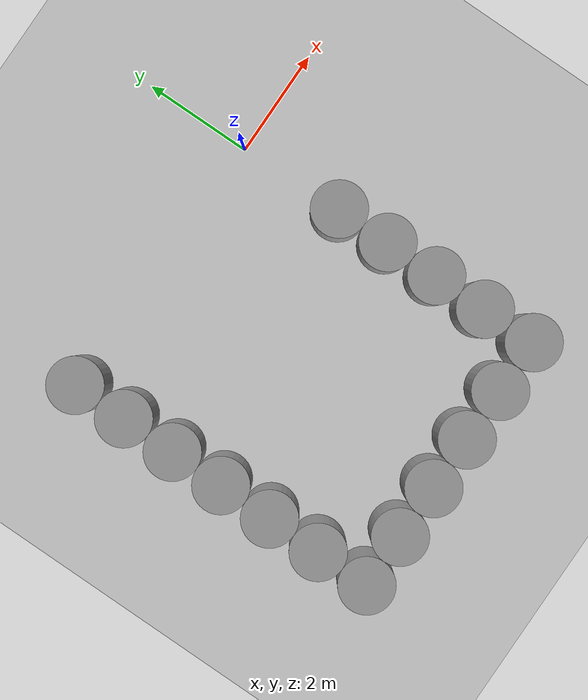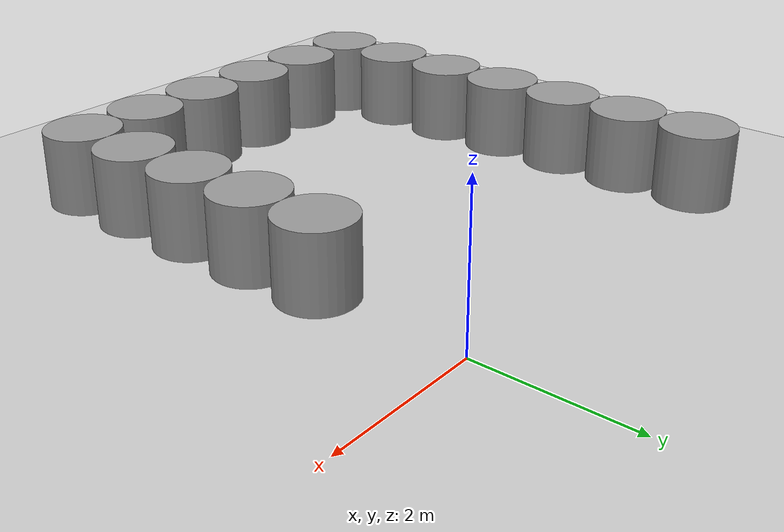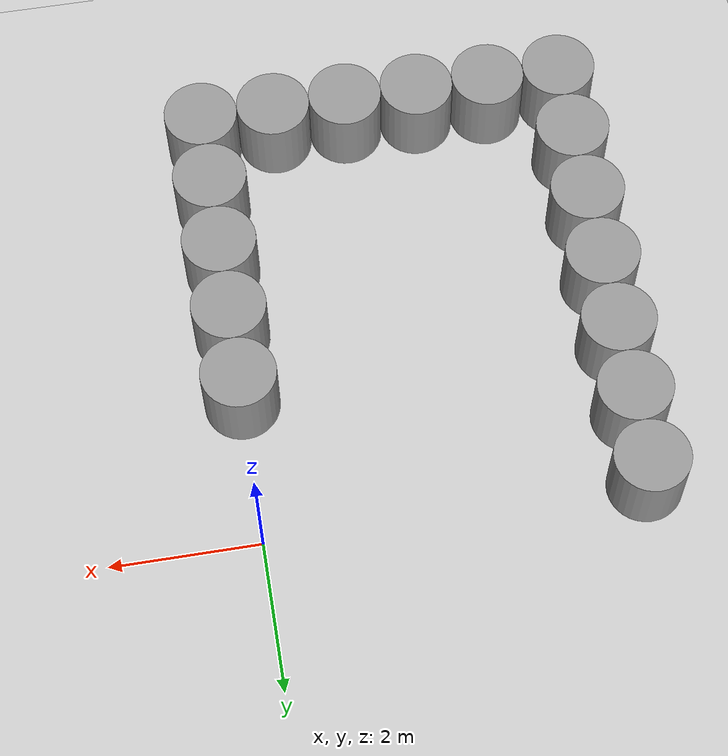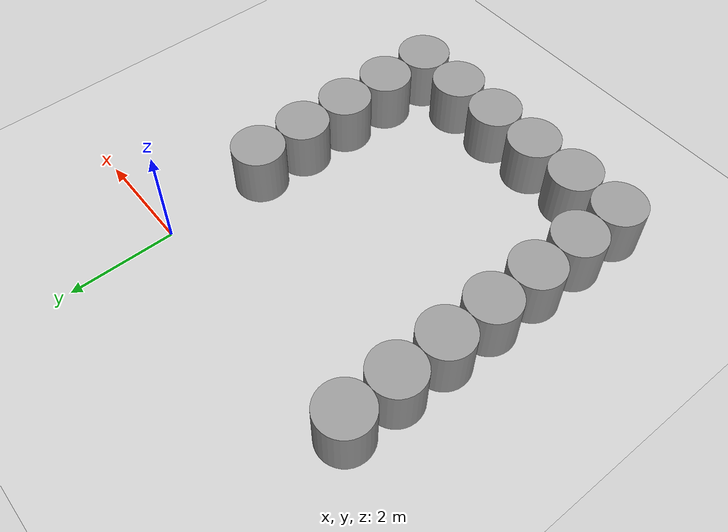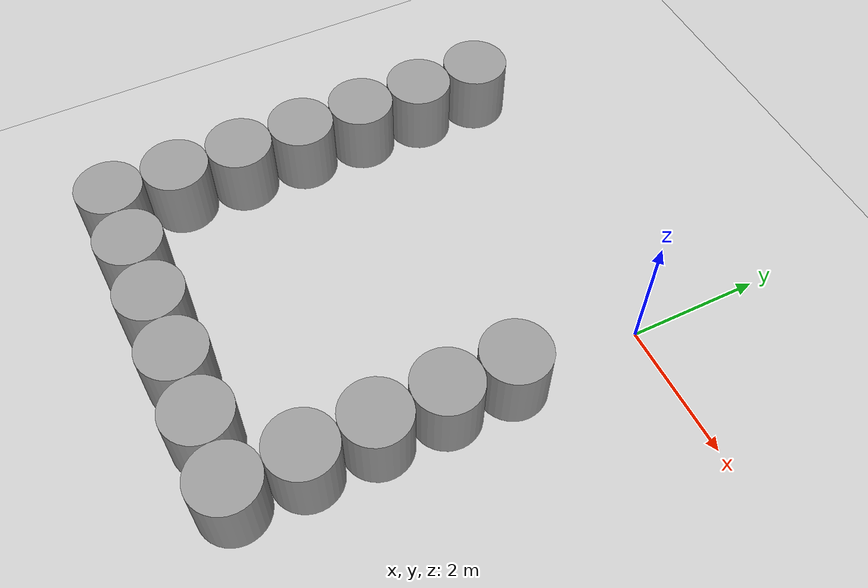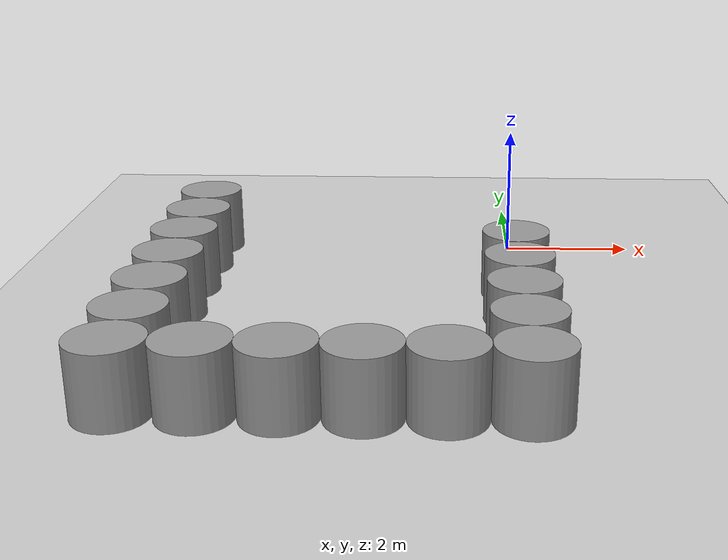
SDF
<sdf version="1.7">
 <world name="default">
  <model name="ground_plane">
   <static>1</static>
   <link name="link">
    <collision name="collision">
     <geometry><plane><normal>0 0 1</normal><size>100 100</size></plane></geometry>
     <surface>
      <contact><collide_bitmask>65535</collide_bitmask></contact>
      <friction><ode><mu>100</mu><mu2>50</mu2></ode></friction>
     </surface>
    </collision>
    <visual name="visual">
     <cast_shadows>0</cast_shadows>
     <geometry><plane><normal>0 0 1</normal><size>100 100</size></plane></geometry>
     <material>
      <script><uri>file://media/materials/scripts/gazebo.material</uri><name>Gazebo/Grey</name></script>
     </material>
    </visual>
   </link>
  </model>
  <model name="cylinder_1m_1">
   <model name="cylinder_1m">
    <link name="link_0">
     <inertial>
      <mass>1</mass>
      <inertia>
       <ixx>0.166667</ixx>
       <ixy>0</ixy>
       <ixz>0</ixz>
       <iyy>0.166667</iyy>
       <iyz>0</iyz>
       <izz>0.166667</izz>
      </inertia>
     </inertial>
     <pose>0 0 -0 1.5708 -0 0</pose>
     <visual name="visual">
      <geometry>
       <mesh>
        <uri>/home/leesirius/workbench_ws/src/tb3_custom_worlds/custom_models/cylinder_1m.obj</uri>
        <scale>1 1 1</scale>
       </mesh>
      </geometry>
      <material>
       <lighting>1</lighting>
       <script><uri>file://media/materials/scripts/gazebo.material</uri><name>Gazebo/Grey</name></script>
       <shader type="pixel"/>
      </material>
     </visual>
     <collision name="collision">
      <geometry>
       <mesh>
        <uri>/home/leesirius/workbench_ws/src/tb3_custom_worlds/custom_models/cylinder_1m.obj</uri>
        <scale>1 1 1</scale>
       </mesh>
      </geometry>
      <surface>
       <friction>
        <ode><mu>1</mu><mu2>1</mu2><fdir1>0 0 0</fdir1><slip1>0</slip1><slip2>0</slip2></ode>
        <torsional>
         <coefficient>1</coefficient>
         <patch_radius>0</patch_radius>
         <surface_radius>0</surface_radius>
         <use_patch_radius>1</use_patch_radius>
         <ode><slip>0</slip></ode>
        </torsional>
       </friction>
       <bounce><restitution_coefficient>0</restitution_coefficient><threshold>1e+06</threshold></bounce>
       <contact>
        <collide_without_contact>0</collide_without_contact>
        <collide_without_contact_bitmask>1</collide_without_contact_bitmask>
        <collide_bitmask>1</collide_bitmask>
        <ode>
         <soft_cfm>0</soft_cfm>
         <soft_erp>0.2</soft_erp>
         <kp>1e+13</kp>
         <kd>1</kd>
         <max_vel>0.01</max_vel>
         <min_depth>0</min_depth>
        </ode>
        <bullet>
         <split_impulse>1</split_impulse>
         <split_impulse_penetration_threshold>-0.01</split_impulse_penetration_threshold>
         <soft_cfm>0</soft_cfm>
         <soft_erp>0.2</soft_erp>
         <kp>1e+13</kp>
         <kd>1</kd>
        </bullet>
       </contact>
      </surface>
     </collision>
    </link>
    <static>0</static>
    <pose>0 0 4e-06 0 -0 0</pose>
   </model>
   <static>1</static>
   <pose>1.1e-05 -2.00001 0.499996 -4e-06 0 3.1e-05</pose>
  </model>
  <model name="cylinder_1m_1_clone">
   <model name="cylinder_1m">
    <link name="link_0">
     <inertial>
      <mass>1</mass>
      <inertia>
       <ixx>0.166667</ixx>
       <ixy>0</ixy>
       <ixz>0</ixz>
       <iyy>0.166667</iyy>
       <iyz>0</iyz>
       <izz>0.166667</izz>
      </inertia>
     </inertial>
     <pose>0 0 -0 1.5708 -0 0</pose>
     <visual name="visual">
      <geometry>
       <mesh>
        <uri>/home/leesirius/workbench_ws/src/tb3_custom_worlds/custom_models/cylinder_1m.obj</uri>
        <scale>1 1 1</scale>
       </mesh>
      </geometry>
      <material>
       <lighting>1</lighting>
       <script><uri>file://media/materials/scripts/gazebo.material</uri><name>Gazebo/Grey</name></script>
       <shader type="pixel"/>
      </material>
     </visual>
     <collision name="collision">
      <geometry>
       <mesh>
        <uri>/home/leesirius/workbench_ws/src/tb3_custom_worlds/custom_models/cylinder_1m.obj</uri>
        <scale>1 1 1</scale>
       </mesh>
      </geometry>
      <surface>
       <friction>
        <ode><mu>1</mu><mu2>1</mu2><fdir1>0 0 0</fdir1><slip1>0</slip1><slip2>0</slip2></ode>
        <torsional>
         <coefficient>1</coefficient>
         <patch_radius>0</patch_radius>
         <surface_radius>0</surface_radius>
         <use_patch_radius>1</use_patch_radius>
         <ode><slip>0</slip></ode>
        </torsional>
       </friction>
       <bounce><restitution_coefficient>0</restitution_coefficient><threshold>1e+06</threshold></bounce>
       <contact>
        <collide_without_contact>0</collide_without_contact>
        <collide_without_contact_bitmask>1</collide_without_contact_bitmask>
        <collide_bitmask>1</collide_bitmask>
        <ode>
         <soft_cfm>0</soft_cfm>
         <soft_erp>0.2</soft_erp>
         <kp>1e+13</kp>
         <kd>1</kd>
         <max_vel>0.01</max_vel>
         <min_depth>0</min_depth>
        </ode>
        <bullet>
         <split_impulse>1</split_impulse>
         <split_impulse_penetration_threshold>-0.01</split_impulse_penetration_threshold>
         <soft_cfm>0</soft_cfm>
         <soft_erp>0.2</soft_erp>
         <kp>1e+13</kp>
         <kd>1</kd>
        </bullet>
       </contact>
      </surface>
     </collision>
    </link>
    <static>0</static>
    <pose>0 0 4e-06 0 -0 0</pose>
   </model>
   <static>1</static>
   <pose>1.1e-05 -3.00001 0.499996 -4e-06 0 3.1e-05</pose>
  </model>
  <model name="cylinder_1m_1_clone_0">
   <model name="cylinder_1m">
    <link name="link_0">
     <inertial>
      <mass>1</mass>
      <inertia>
       <ixx>0.166667</ixx>
       <ixy>0</ixy>
       <ixz>0</ixz>
       <iyy>0.166667</iyy>
       <iyz>0</iyz>
       <izz>0.166667</izz>
      </inertia>
     </inertial>
     <pose>0 0 -0 1.5708 -0 0</pose>
     <visual name="visual">
      <geometry>
       <mesh>
        <uri>/home/leesirius/workbench_ws/src/tb3_custom_worlds/custom_models/cylinder_1m.obj</uri>
        <scale>1 1 1</scale>
       </mesh>
      </geometry>
      <material>
       <lighting>1</lighting>
       <script><uri>file://media/materials/scripts/gazebo.material</uri><name>Gazebo/Grey</name></script>
       <shader type="pixel"/>
      </material>
     </visual>
     <collision name="collision">
      <geometry>
       <mesh>
        <uri>/home/leesirius/workbench_ws/src/tb3_custom_worlds/custom_models/cylinder_1m.obj</uri>
        <scale>1 1 1</scale>
       </mesh>
      </geometry>
      <surface>
       <friction>
        <ode><mu>1</mu><mu2>1</mu2><fdir1>0 0 0</fdir1><slip1>0</slip1><slip2>0</slip2></ode>
        <torsional>
         <coefficient>1</coefficient>
         <patch_radius>0</patch_radius>
         <surface_radius>0</surface_radius>
         <use_patch_radius>1</use_patch_radius>
         <ode><slip>0</slip></ode>
        </torsional>
       </friction>
       <bounce><restitution_coefficient>0</restitution_coefficient><threshold>1e+06</threshold></bounce>
       <contact>
        <collide_without_contact>0</collide_without_contact>
        <collide_without_contact_bitmask>1</collide_without_contact_bitmask>
        <collide_bitmask>1</collide_bitmask>
        <ode>
         <soft_cfm>0</soft_cfm>
         <soft_erp>0.2</soft_erp>
         <kp>1e+13</kp>
         <kd>1</kd>
         <max_vel>0.01</max_vel>
         <min_depth>0</min_depth>
        </ode>
        <bullet>
         <split_impulse>1</split_impulse>
         <split_impulse_penetration_threshold>-0.01</split_impulse_penetration_threshold>
         <soft_cfm>0</soft_cfm>
         <soft_erp>0.2</soft_erp>
         <kp>1e+13</kp>
         <kd>1</kd>
        </bullet>
       </contact>
      </surface>
     </collision>
    </link>
    <static>0</static>
    <pose>0 0 4e-06 0 -0 0</pose>
   </model>
   <static>1</static>
   <pose>1.1e-05 -4.00001 0.499996 -4e-06 0 3.1e-05</pose>
  </model>
  <model name="cylinder_1m_1_clone_2">
   <model name="cylinder_1m">
    <link name="link_0">
     <inertial>
      <mass>1</mass>
      <inertia>
       <ixx>0.166667</ixx>
       <ixy>0</ixy>
       <ixz>0</ixz>
       <iyy>0.166667</iyy>
       <iyz>0</iyz>
       <izz>0.166667</izz>
      </inertia>
     </inertial>
     <pose>0 0 -0 1.5708 -0 0</pose>
     <visual name="visual">
      <geometry>
       <mesh>
        <uri>/home/leesirius/workbench_ws/src/tb3_custom_worlds/custom_models/cylinder_1m.obj</uri>
        <scale>1 1 1</scale>
       </mesh>
      </geometry>
      <material>
       <lighting>1</lighting>
       <script><uri>file://media/materials/scripts/gazebo.material</uri><name>Gazebo/Grey</name></script>
       <shader type="pixel"/>
      </material>
     </visual>
     <collision name="collision">
      <geometry>
       <mesh>
        <uri>/home/leesirius/workbench_ws/src/tb3_custom_worlds/custom_models/cylinder_1m.obj</uri>
        <scale>1 1 1</scale>
       </mesh>
      </geometry>
      <surface>
       <friction>
        <ode><mu>1</mu><mu2>1</mu2><fdir1>0 0 0</fdir1><slip1>0</slip1><slip2>0</slip2></ode>
        <torsional>
         <coefficient>1</coefficient>
         <patch_radius>0</patch_radius>
         <surface_radius>0</surface_radius>
         <use_patch_radius>1</use_patch_radius>
         <ode><slip>0</slip></ode>
        </torsional>
       </friction>
       <bounce><restitution_coefficient>0</restitution_coefficient><threshold>1e+06</threshold></bounce>
       <contact>
        <collide_without_contact>0</collide_without_contact>
        <collide_without_contact_bitmask>1</collide_without_contact_bitmask>
        <collide_bitmask>1</collide_bitmask>
        <ode>
         <soft_cfm>0</soft_cfm>
         <soft_erp>0.2</soft_erp>
         <kp>1e+13</kp>
         <kd>1</kd>
         <max_vel>0.01</max_vel>
         <min_depth>0</min_depth>
        </ode>
        <bullet>
         <split_impulse>1</split_impulse>
         <split_impulse_penetration_threshold>-0.01</split_impulse_penetration_threshold>
         <soft_cfm>0</soft_cfm>
         <soft_erp>0.2</soft_erp>
         <kp>1e+13</kp>
         <kd>1</kd>
        </bullet>
       </contact>
      </surface>
     </collision>
    </link>
    <static>0</static>
    <pose>0 0 4e-06 0 -0 0</pose>
   </model>
   <static>1</static>
   <pose>1.1e-05 -5.00001 0.499996 -4e-06 0 3.1e-05</pose>
  </model>
  <model name="cylinder_1m_1_clone_5">
   <model name="cylinder_1m">
    <link name="link_0">
     <inertial>
      <mass>1</mass>
      <inertia>
       <ixx>0.166667</ixx>
       <ixy>0</ixy>
       <ixz>0</ixz>
       <iyy>0.166667</iyy>
       <iyz>0</iyz>
       <izz>0.166667</izz>
      </inertia>
     </inertial>
     <pose>0 0 -0 1.5708 -0 0</pose>
     <visual name="visual">
      <geometry>
       <mesh>
        <uri>/home/leesirius/workbench_ws/src/tb3_custom_worlds/custom_models/cylinder_1m.obj</uri>
        <scale>1 1 1</scale>
       </mesh>
      </geometry>
      <material>
       <lighting>1</lighting>
       <script><uri>file://media/materials/scripts/gazebo.material</uri><name>Gazebo/Grey</name></script>
       <shader type="pixel"/>
      </material>
     </visual>
     <collision name="collision">
      <geometry>
       <mesh>
        <uri>/home/leesirius/workbench_ws/src/tb3_custom_worlds/custom_models/cylinder_1m.obj</uri>
        <scale>1 1 1</scale>
       </mesh>
      </geometry>
      <surface>
       <friction>
        <ode><mu>1</mu><mu2>1</mu2><fdir1>0 0 0</fdir1><slip1>0</slip1><slip2>0</slip2></ode>
        <torsional>
         <coefficient>1</coefficient>
         <patch_radius>0</patch_radius>
         <surface_radius>0</surface_radius>
         <use_patch_radius>1</use_patch_radius>
         <ode><slip>0</slip></ode>
        </torsional>
       </friction>
       <bounce><restitution_coefficient>0</restitution_coefficient><threshold>1e+06</threshold></bounce>
       <contact>
        <collide_without_contact>0</collide_without_contact>
        <collide_without_contact_bitmask>1</collide_without_contact_bitmask>
        <collide_bitmask>1</collide_bitmask>
        <ode>
         <soft_cfm>0</soft_cfm>
         <soft_erp>0.2</soft_erp>
         <kp>1e+13</kp>
         <kd>1</kd>
         <max_vel>0.01</max_vel>
         <min_depth>0</min_depth>
        </ode>
        <bullet>
         <split_impulse>1</split_impulse>
         <split_impulse_penetration_threshold>-0.01</split_impulse_penetration_threshold>
         <soft_cfm>0</soft_cfm>
         <soft_erp>0.2</soft_erp>
         <kp>1e+13</kp>
         <kd>1</kd>
        </bullet>
       </contact>
      </surface>
     </collision>
    </link>
    <static>0</static>
    <pose>0 0 4e-06 0 -0 0</pose>
   </model>
   <static>1</static>
   <pose>1.1e-05 -6.00001 0.499996 -4e-06 0 3.1e-05</pose>
  </model>
  <model name="cylinder_1m_1_clone_6">
   <model name="cylinder_1m">
    <link name="link_0">
     <inertial>
      <mass>1</mass>
      <inertia>
       <ixx>0.166667</ixx>
       <ixy>0</ixy>
       <ixz>0</ixz>
       <iyy>0.166667</iyy>
       <iyz>0</iyz>
       <izz>0.166667</izz>
      </inertia>
     </inertial>
     <pose>0 0 -0 1.5708 -0 0</pose>
     <visual name="visual">
      <geometry>
       <mesh>
        <uri>/home/leesirius/workbench_ws/src/tb3_custom_worlds/custom_models/cylinder_1m.obj</uri>
        <scale>1 1 1</scale>
       </mesh>
      </geometry>
      <material>
       <lighting>1</lighting>
       <script><uri>file://media/materials/scripts/gazebo.material</uri><name>Gazebo/Grey</name></script>
       <shader type="pixel"/>
      </material>
     </visual>
     <collision name="collision">
      <geometry>
       <mesh>
        <uri>/home/leesirius/workbench_ws/src/tb3_custom_worlds/custom_models/cylinder_1m.obj</uri>
        <scale>1 1 1</scale>
       </mesh>
      </geometry>
      <surface>
       <friction>
        <ode><mu>1</mu><mu2>1</mu2><fdir1>0 0 0</fdir1><slip1>0</slip1><slip2>0</slip2></ode>
        <torsional>
         <coefficient>1</coefficient>
         <patch_radius>0</patch_radius>
         <surface_radius>0</surface_radius>
         <use_patch_radius>1</use_patch_radius>
         <ode><slip>0</slip></ode>
        </torsional>
       </friction>
       <bounce><restitution_coefficient>0</restitution_coefficient><threshold>1e+06</threshold></bounce>
       <contact>
        <collide_without_contact>0</collide_without_contact>
        <collide_without_contact_bitmask>1</collide_without_contact_bitmask>
        <collide_bitmask>1</collide_bitmask>
        <ode>
         <soft_cfm>0</soft_cfm>
         <soft_erp>0.2</soft_erp>
         <kp>1e+13</kp>
         <kd>1</kd>
         <max_vel>0.01</max_vel>
         <min_depth>0</min_depth>
        </ode>
        <bullet>
         <split_impulse>1</split_impulse>
         <split_impulse_penetration_threshold>-0.01</split_impulse_penetration_threshold>
         <soft_cfm>0</soft_cfm>
         <soft_erp>0.2</soft_erp>
         <kp>1e+13</kp>
         <kd>1</kd>
        </bullet>
       </contact>
      </surface>
     </collision>
    </link>
    <static>0</static>
    <pose>0 0 4e-06 0 -0 0</pose>
   </model>
   <static>1</static>
   <pose>-0.999989 -6.00001 0.499996 -4e-06 0 3.1e-05</pose>
  </model>
  <model name="cylinder_1m_1_clone_7">
   <model name="cylinder_1m">
    <link name="link_0">
     <inertial>
      <mass>1</mass>
      <inertia>
       <ixx>0.166667</ixx>
       <ixy>0</ixy>
       <ixz>0</ixz>
       <iyy>0.166667</iyy>
       <iyz>0</iyz>
       <izz>0.166667</izz>
      </inertia>
     </inertial>
     <pose>0 0 -0 1.5708 -0 0</pose>
     <visual name="visual">
      <geometry>
       <mesh>
        <uri>/home/leesirius/workbench_ws/src/tb3_custom_worlds/custom_models/cylinder_1m.obj</uri>
        <scale>1 1 1</scale>
       </mesh>
      </geometry>
      <material>
       <lighting>1</lighting>
       <script><uri>file://media/materials/scripts/gazebo.material</uri><name>Gazebo/Grey</name></script>
       <shader type="pixel"/>
      </material>
     </visual>
     <collision name="collision">
      <geometry>
       <mesh>
        <uri>/home/leesirius/workbench_ws/src/tb3_custom_worlds/custom_models/cylinder_1m.obj</uri>
        <scale>1 1 1</scale>
       </mesh>
      </geometry>
      <surface>
       <friction>
        <ode><mu>1</mu><mu2>1</mu2><fdir1>0 0 0</fdir1><slip1>0</slip1><slip2>0</slip2></ode>
        <torsional>
         <coefficient>1</coefficient>
         <patch_radius>0</patch_radius>
         <surface_radius>0</surface_radius>
         <use_patch_radius>1</use_patch_radius>
         <ode><slip>0</slip></ode>
        </torsional>
       </friction>
       <bounce><restitution_coefficient>0</restitution_coefficient><threshold>1e+06</threshold></bounce>
       <contact>
        <collide_without_contact>0</collide_without_contact>
        <collide_without_contact_bitmask>1</collide_without_contact_bitmask>
        <collide_bitmask>1</collide_bitmask>
        <ode>
         <soft_cfm>0</soft_cfm>
         <soft_erp>0.2</soft_erp>
         <kp>1e+13</kp>
         <kd>1</kd>
         <max_vel>0.01</max_vel>
         <min_depth>0</min_depth>
        </ode>
        <bullet>
         <split_impulse>1</split_impulse>
         <split_impulse_penetration_threshold>-0.01</split_impulse_penetration_threshold>
         <soft_cfm>0</soft_cfm>
         <soft_erp>0.2</soft_erp>
         <kp>1e+13</kp>
         <kd>1</kd>
        </bullet>
       </contact>
      </surface>
     </collision>
    </link>
    <static>0</static>
    <pose>0 0 4e-06 0 -0 0</pose>
   </model>
   <static>1</static>
   <pose>-1.99999 -6.00001 0.499996 -4e-06 0 3.1e-05</pose>
  </model>
  <model name="cylinder_1m_1_clone_8">
   <model name="cylinder_1m">
    <link name="link_0">
     <inertial>
      <mass>1</mass>
      <inertia>
       <ixx>0.166667</ixx>
       <ixy>0</ixy>
       <ixz>0</ixz>
       <iyy>0.166667</iyy>
       <iyz>0</iyz>
       <izz>0.166667</izz>
      </inertia>
     </inertial>
     <pose>0 0 -0 1.5708 -0 0</pose>
     <visual name="visual">
      <geometry>
       <mesh>
        <uri>/home/leesirius/workbench_ws/src/tb3_custom_worlds/custom_models/cylinder_1m.obj</uri>
        <scale>1 1 1</scale>
       </mesh>
      </geometry>
      <material>
       <lighting>1</lighting>
       <script><uri>file://media/materials/scripts/gazebo.material</uri><name>Gazebo/Grey</name></script>
       <shader type="pixel"/>
      </material>
     </visual>
     <collision name="collision">
      <geometry>
       <mesh>
        <uri>/home/leesirius/workbench_ws/src/tb3_custom_worlds/custom_models/cylinder_1m.obj</uri>
        <scale>1 1 1</scale>
       </mesh>
      </geometry>
      <surface>
       <friction>
        <ode><mu>1</mu><mu2>1</mu2><fdir1>0 0 0</fdir1><slip1>0</slip1><slip2>0</slip2></ode>
        <torsional>
         <coefficient>1</coefficient>
         <patch_radius>0</patch_radius>
         <surface_radius>0</surface_radius>
         <use_patch_radius>1</use_patch_radius>
         <ode><slip>0</slip></ode>
        </torsional>
       </friction>
       <bounce><restitution_coefficient>0</restitution_coefficient><threshold>1e+06</threshold></bounce>
       <contact>
        <collide_without_contact>0</collide_without_contact>
        <collide_without_contact_bitmask>1</collide_without_contact_bitmask>
        <collide_bitmask>1</collide_bitmask>
        <ode>
         <soft_cfm>0</soft_cfm>
         <soft_erp>0.2</soft_erp>
         <kp>1e+13</kp>
         <kd>1</kd>
         <max_vel>0.01</max_vel>
         <min_depth>0</min_depth>
        </ode>
        <bullet>
         <split_impulse>1</split_impulse>
         <split_impulse_penetration_threshold>-0.01</split_impulse_penetration_threshold>
         <soft_cfm>0</soft_cfm>
         <soft_erp>0.2</soft_erp>
         <kp>1e+13</kp>
         <kd>1</kd>
        </bullet>
       </contact>
      </surface>
     </collision>
    </link>
    <static>0</static>
    <pose>0 0 4e-06 0 -0 0</pose>
   </model>
   <static>1</static>
   <pose>-2.99999 -6.00001 0.499996 -4e-06 0 3.1e-05</pose>
  </model>
  <model name="cylinder_1m_1_clone_9">
   <model name="cylinder_1m">
    <link name="link_0">
     <inertial>
      <mass>1</mass>
      <inertia>
       <ixx>0.166667</ixx>
       <ixy>0</ixy>
       <ixz>0</ixz>
       <iyy>0.166667</iyy>
       <iyz>0</iyz>
       <izz>0.166667</izz>
      </inertia>
     </inertial>
     <pose>0 0 -0 1.5708 -0 0</pose>
     <visual name="visual">
      <geometry>
       <mesh>
        <uri>/home/leesirius/workbench_ws/src/tb3_custom_worlds/custom_models/cylinder_1m.obj</uri>
        <scale>1 1 1</scale>
       </mesh>
      </geometry>
      <material>
       <lighting>1</lighting>
       <script><uri>file://media/materials/scripts/gazebo.material</uri><name>Gazebo/Grey</name></script>
       <shader type="pixel"/>
      </material>
     </visual>
     <collision name="collision">
      <geometry>
       <mesh>
        <uri>/home/leesirius/workbench_ws/src/tb3_custom_worlds/custom_models/cylinder_1m.obj</uri>
        <scale>1 1 1</scale>
       </mesh>
      </geometry>
      <surface>
       <friction>
        <ode><mu>1</mu><mu2>1</mu2><fdir1>0 0 0</fdir1><slip1>0</slip1><slip2>0</slip2></ode>
        <torsional>
         <coefficient>1</coefficient>
         <patch_radius>0</patch_radius>
         <surface_radius>0</surface_radius>
         <use_patch_radius>1</use_patch_radius>
         <ode><slip>0</slip></ode>
        </torsional>
       </friction>
       <bounce><restitution_coefficient>0</restitution_coefficient><threshold>1e+06</threshold></bounce>
       <contact>
        <collide_without_contact>0</collide_without_contact>
        <collide_without_contact_bitmask>1</collide_without_contact_bitmask>
        <collide_bitmask>1</collide_bitmask>
        <ode>
         <soft_cfm>0</soft_cfm>
         <soft_erp>0.2</soft_erp>
         <kp>1e+13</kp>
         <kd>1</kd>
         <max_vel>0.01</max_vel>
         <min_depth>0</min_depth>
        </ode>
        <bullet>
         <split_impulse>1</split_impulse>
         <split_impulse_penetration_threshold>-0.01</split_impulse_penetration_threshold>
         <soft_cfm>0</soft_cfm>
         <soft_erp>0.2</soft_erp>
         <kp>1e+13</kp>
         <kd>1</kd>
        </bullet>
       </contact>
      </surface>
     </collision>
    </link>
    <static>0</static>
    <pose>0 0 4e-06 0 -0 0</pose>
   </model>
   <static>1</static>
   <pose>-3.99999 -6.00001 0.499996 -4e-06 0 3.1e-05</pose>
  </model>
  <model name="cylinder_1m_1_clone_10">
   <model name="cylinder_1m">
    <link name="link_0">
     <inertial>
      <mass>1</mass>
      <inertia>
       <ixx>0.166667</ixx>
       <ixy>0</ixy>
       <ixz>0</ixz>
       <iyy>0.166667</iyy>
       <iyz>0</iyz>
       <izz>0.166667</izz>
      </inertia>
     </inertial>
     <pose>0 0 -0 1.5708 -0 0</pose>
     <visual name="visual">
      <geometry>
       <mesh>
        <uri>/home/leesirius/workbench_ws/src/tb3_custom_worlds/custom_models/cylinder_1m.obj</uri>
        <scale>1 1 1</scale>
       </mesh>
      </geometry>
      <material>
       <lighting>1</lighting>
       <script><uri>file://media/materials/scripts/gazebo.material</uri><name>Gazebo/Grey</name></script>
       <shader type="pixel"/>
      </material>
     </visual>
     <collision name="collision">
      <geometry>
       <mesh>
        <uri>/home/leesirius/workbench_ws/src/tb3_custom_worlds/custom_models/cylinder_1m.obj</uri>
        <scale>1 1 1</scale>
       </mesh>
      </geometry>
      <surface>
       <friction>
        <ode><mu>1</mu><mu2>1</mu2><fdir1>0 0 0</fdir1><slip1>0</slip1><slip2>0</slip2></ode>
        <torsional>
         <coefficient>1</coefficient>
         <patch_radius>0</patch_radius>
         <surface_radius>0</surface_radius>
         <use_patch_radius>1</use_patch_radius>
         <ode><slip>0</slip></ode>
        </torsional>
       </friction>
       <bounce><restitution_coefficient>0</restitution_coefficient><threshold>1e+06</threshold></bounce>
       <contact>
        <collide_without_contact>0</collide_without_contact>
        <collide_without_contact_bitmask>1</collide_without_contact_bitmask>
        <collide_bitmask>1</collide_bitmask>
        <ode>
         <soft_cfm>0</soft_cfm>
         <soft_erp>0.2</soft_erp>
         <kp>1e+13</kp>
         <kd>1</kd>
         <max_vel>0.01</max_vel>
         <min_depth>0</min_depth>
        </ode>
        <bullet>
         <split_impulse>1</split_impulse>
         <split_impulse_penetration_threshold>-0.01</split_impulse_penetration_threshold>
         <soft_cfm>0</soft_cfm>
         <soft_erp>0.2</soft_erp>
         <kp>1e+13</kp>
         <kd>1</kd>
        </bullet>
       </contact>
      </surface>
     </collision>
    </link>
    <static>0</static>
    <pose>0 0 4e-06 0 -0 0</pose>
   </model>
   <static>1</static>
   <pose>-4.99999 -6.00001 0.499996 -4e-06 0 3.1e-05</pose>
  </model>
  <model name="cylinder_1m_1_clone_11">
   <model name="cylinder_1m">
    <link name="link_0">
     <inertial>
      <mass>1</mass>
      <inertia>
       <ixx>0.166667</ixx>
       <ixy>0</ixy>
       <ixz>0</ixz>
       <iyy>0.166667</iyy>
       <iyz>0</iyz>
       <izz>0.166667</izz>
      </inertia>
     </inertial>
     <pose>0 0 -0 1.5708 -0 0</pose>
     <visual name="visual">
      <geometry>
       <mesh>
        <uri>/home/leesirius/workbench_ws/src/tb3_custom_worlds/custom_models/cylinder_1m.obj</uri>
        <scale>1 1 1</scale>
       </mesh>
      </geometry>
      <material>
       <lighting>1</lighting>
       <script><uri>file://media/materials/scripts/gazebo.material</uri><name>Gazebo/Grey</name></script>
       <shader type="pixel"/>
      </material>
     </visual>
     <collision name="collision">
      <geometry>
       <mesh>
        <uri>/home/leesirius/workbench_ws/src/tb3_custom_worlds/custom_models/cylinder_1m.obj</uri>
        <scale>1 1 1</scale>
       </mesh>
      </geometry>
      <surface>
       <friction>
        <ode><mu>1</mu><mu2>1</mu2><fdir1>0 0 0</fdir1><slip1>0</slip1><slip2>0</slip2></ode>
        <torsional>
         <coefficient>1</coefficient>
         <patch_radius>0</patch_radius>
         <surface_radius>0</surface_radius>
         <use_patch_radius>1</use_patch_radius>
         <ode><slip>0</slip></ode>
        </torsional>
       </friction>
       <bounce><restitution_coefficient>0</restitution_coefficient><threshold>1e+06</threshold></bounce>
       <contact>
        <collide_without_contact>0</collide_without_contact>
        <collide_without_contact_bitmask>1</collide_without_contact_bitmask>
        <collide_bitmask>1</collide_bitmask>
        <ode>
         <soft_cfm>0</soft_cfm>
         <soft_erp>0.2</soft_erp>
         <kp>1e+13</kp>
         <kd>1</kd>
         <max_vel>0.01</max_vel>
         <min_depth>0</min_depth>
        </ode>
        <bullet>
         <split_impulse>1</split_impulse>
         <split_impulse_penetration_threshold>-0.01</split_impulse_penetration_threshold>
         <soft_cfm>0</soft_cfm>
         <soft_erp>0.2</soft_erp>
         <kp>1e+13</kp>
         <kd>1</kd>
        </bullet>
       </contact>
      </surface>
     </collision>
    </link>
    <static>0</static>
    <pose>0 0 4e-06 0 -0 0</pose>
   </model>
   <static>1</static>
   <pose>-4.99999 -5.00001 0.499996 -4e-06 0 3.1e-05</pose>
  </model>
  <model name="cylinder_1m_1_clone_12">
   <model name="cylinder_1m">
    <link name="link_0">
     <inertial>
      <mass>1</mass>
      <inertia>
       <ixx>0.166667</ixx>
       <ixy>0</ixy>
       <ixz>0</ixz>
       <iyy>0.166667</iyy>
       <iyz>0</iyz>
       <izz>0.166667</izz>
      </inertia>
     </inertial>
     <pose>0 0 -0 1.5708 -0 0</pose>
     <visual name="visual">
      <geometry>
       <mesh>
        <uri>/home/leesirius/workbench_ws/src/tb3_custom_worlds/custom_models/cylinder_1m.obj</uri>
        <scale>1 1 1</scale>
       </mesh>
      </geometry>
      <material>
       <lighting>1</lighting>
       <script><uri>file://media/materials/scripts/gazebo.material</uri><name>Gazebo/Grey</name></script>
       <shader type="pixel"/>
      </material>
     </visual>
     <collision name="collision">
      <geometry>
       <mesh>
        <uri>/home/leesirius/workbench_ws/src/tb3_custom_worlds/custom_models/cylinder_1m.obj</uri>
        <scale>1 1 1</scale>
       </mesh>
      </geometry>
      <surface>
       <friction>
        <ode><mu>1</mu><mu2>1</mu2><fdir1>0 0 0</fdir1><slip1>0</slip1><slip2>0</slip2></ode>
        <torsional>
         <coefficient>1</coefficient>
         <patch_radius>0</patch_radius>
         <surface_radius>0</surface_radius>
         <use_patch_radius>1</use_patch_radius>
         <ode><slip>0</slip></ode>
        </torsional>
       </friction>
       <bounce><restitution_coefficient>0</restitution_coefficient><threshold>1e+06</threshold></bounce>
       <contact>
        <collide_without_contact>0</collide_without_contact>
        <collide_without_contact_bitmask>1</collide_without_contact_bitmask>
        <collide_bitmask>1</collide_bitmask>
        <ode>
         <soft_cfm>0</soft_cfm>
         <soft_erp>0.2</soft_erp>
         <kp>1e+13</kp>
         <kd>1</kd>
         <max_vel>0.01</max_vel>
         <min_depth>0</min_depth>
        </ode>
        <bullet>
         <split_impulse>1</split_impulse>
         <split_impulse_penetration_threshold>-0.01</split_impulse_penetration_threshold>
         <soft_cfm>0</soft_cfm>
         <soft_erp>0.2</soft_erp>
         <kp>1e+13</kp>
         <kd>1</kd>
        </bullet>
       </contact>
      </surface>
     </collision>
    </link>
    <static>0</static>
    <pose>0 0 4e-06 0 -0 0</pose>
   </model>
   <static>1</static>
   <pose>-4.99999 -4.00001 0.499996 -4e-06 0 3.1e-05</pose>
  </model>
  <model name="cylinder_1m_1_clone_13">
   <model name="cylinder_1m">
    <link name="link_0">
     <inertial>
      <mass>1</mass>
      <inertia>
       <ixx>0.166667</ixx>
       <ixy>0</ixy>
       <ixz>0</ixz>
       <iyy>0.166667</iyy>
       <iyz>0</iyz>
       <izz>0.166667</izz>
      </inertia>
     </inertial>
     <pose>0 0 -0 1.5708 -0 0</pose>
     <visual name="visual">
      <geometry>
       <mesh>
        <uri>/home/leesirius/workbench_ws/src/tb3_custom_worlds/custom_models/cylinder_1m.obj</uri>
        <scale>1 1 1</scale>
       </mesh>
      </geometry>
      <material>
       <lighting>1</lighting>
       <script><uri>file://media/materials/scripts/gazebo.material</uri><name>Gazebo/Grey</name></script>
       <shader type="pixel"/>
      </material>
     </visual>
     <collision name="collision">
      <geometry>
       <mesh>
        <uri>/home/leesirius/workbench_ws/src/tb3_custom_worlds/custom_models/cylinder_1m.obj</uri>
        <scale>1 1 1</scale>
       </mesh>
      </geometry>
      <surface>
       <friction>
        <ode><mu>1</mu><mu2>1</mu2><fdir1>0 0 0</fdir1><slip1>0</slip1><slip2>0</slip2></ode>
        <torsional>
         <coefficient>1</coefficient>
         <patch_radius>0</patch_radius>
         <surface_radius>0</surface_radius>
         <use_patch_radius>1</use_patch_radius>
         <ode><slip>0</slip></ode>
        </torsional>
       </friction>
       <bounce><restitution_coefficient>0</restitution_coefficient><threshold>1e+06</threshold></bounce>
       <contact>
        <collide_without_contact>0</collide_without_contact>
        <collide_without_contact_bitmask>1</collide_without_contact_bitmask>
        <collide_bitmask>1</collide_bitmask>
        <ode>
         <soft_cfm>0</soft_cfm>
         <soft_erp>0.2</soft_erp>
         <kp>1e+13</kp>
         <kd>1</kd>
         <max_vel>0.01</max_vel>
         <min_depth>0</min_depth>
        </ode>
        <bullet>
         <split_impulse>1</split_impulse>
         <split_impulse_penetration_threshold>-0.01</split_impulse_penetration_threshold>
         <soft_cfm>0</soft_cfm>
         <soft_erp>0.2</soft_erp>
         <kp>1e+13</kp>
         <kd>1</kd>
        </bullet>
       </contact>
      </surface>
     </collision>
    </link>
    <static>0</static>
    <pose>0 0 4e-06 0 -0 0</pose>
   </model>
   <static>1</static>
   <pose>-4.99999 -3.00001 0.499996 -4e-06 0 3.1e-05</pose>
  </model>
  <model name="cylinder_1m_1_clone_14">
   <model name="cylinder_1m">
    <link name="link_0">
     <inertial>
      <mass>1</mass>
      <inertia>
       <ixx>0.166667</ixx>
       <ixy>0</ixy>
       <ixz>0</ixz>
       <iyy>0.166667</iyy>
       <iyz>0</iyz>
       <izz>0.166667</izz>
      </inertia>
     </inertial>
     <pose>0 0 -0 1.5708 -0 0</pose>
     <visual name="visual">
      <geometry>
       <mesh>
        <uri>/home/leesirius/workbench_ws/src/tb3_custom_worlds/custom_models/cylinder_1m.obj</uri>
        <scale>1 1 1</scale>
       </mesh>
      </geometry>
      <material>
       <lighting>1</lighting>
       <script><uri>file://media/materials/scripts/gazebo.material</uri><name>Gazebo/Grey</name></script>
       <shader type="pixel"/>
      </material>
     </visual>
     <collision name="collision">
      <geometry>
       <mesh>
        <uri>/home/leesirius/workbench_ws/src/tb3_custom_worlds/custom_models/cylinder_1m.obj</uri>
        <scale>1 1 1</scale>
       </mesh>
      </geometry>
      <surface>
       <friction>
        <ode><mu>1</mu><mu2>1</mu2><fdir1>0 0 0</fdir1><slip1>0</slip1><slip2>0</slip2></ode>
        <torsional>
         <coefficient>1</coefficient>
         <patch_radius>0</patch_radius>
         <surface_radius>0</surface_radius>
         <use_patch_radius>1</use_patch_radius>
         <ode><slip>0</slip></ode>
        </torsional>
       </friction>
       <bounce><restitution_coefficient>0</restitution_coefficient><threshold>1e+06</threshold></bounce>
       <contact>
        <collide_without_contact>0</collide_without_contact>
        <collide_without_contact_bitmask>1</collide_without_contact_bitmask>
        <collide_bitmask>1</collide_bitmask>
        <ode>
         <soft_cfm>0</soft_cfm>
         <soft_erp>0.2</soft_erp>
         <kp>1e+13</kp>
         <kd>1</kd>
         <max_vel>0.01</max_vel>
         <min_depth>0</min_depth>
        </ode>
        <bullet>
         <split_impulse>1</split_impulse>
         <split_impulse_penetration_threshold>-0.01</split_impulse_penetration_threshold>
         <soft_cfm>0</soft_cfm>
         <soft_erp>0.2</soft_erp>
         <kp>1e+13</kp>
         <kd>1</kd>
        </bullet>
       </contact>
      </surface>
     </collision>
    </link>
    <static>0</static>
    <pose>0 0 4e-06 0 -0 0</pose>
   </model>
   <static>1</static>
   <pose>-4.99999 -2.00001 0.499996 -4e-06 0 3.1e-05</pose>
  </model>
  <model name="cylinder_1m_1_clone_15">
   <model name="cylinder_1m">
    <link name="link_0">
     <inertial>
      <mass>1</mass>
      <inertia>
       <ixx>0.166667</ixx>
       <ixy>0</ixy>
       <ixz>0</ixz>
       <iyy>0.166667</iyy>
       <iyz>0</iyz>
       <izz>0.166667</izz>
      </inertia>
     </inertial>
     <pose>0 0 -0 1.5708 -0 0</pose>
     <visual name="visual">
      <geometry>
       <mesh>
        <uri>/home/leesirius/workbench_ws/src/tb3_custom_worlds/custom_models/cylinder_1m.obj</uri>
        <scale>1 1 1</scale>
       </mesh>
      </geometry>
      <material>
       <lighting>1</lighting>
       <script><uri>file://media/materials/scripts/gazebo.material</uri><name>Gazebo/Grey</name></script>
       <shader type="pixel"/>
      </material>
     </visual>
     <collision name="collision">
      <geometry>
       <mesh>
        <uri>/home/leesirius/workbench_ws/src/tb3_custom_worlds/custom_models/cylinder_1m.obj</uri>
        <scale>1 1 1</scale>
       </mesh>
      </geometry>
      <surface>
       <friction>
        <ode><mu>1</mu><mu2>1</mu2><fdir1>0 0 0</fdir1><slip1>0</slip1><slip2>0</slip2></ode>
        <torsional>
         <coefficient>1</coefficient>
         <patch_radius>0</patch_radius>
         <surface_radius>0</surface_radius>
         <use_patch_radius>1</use_patch_radius>
         <ode><slip>0</slip></ode>
        </torsional>
       </friction>
       <bounce><restitution_coefficient>0</restitution_coefficient><threshold>1e+06</threshold></bounce>
       <contact>
        <collide_without_contact>0</collide_without_contact>
        <collide_without_contact_bitmask>1</collide_without_contact_bitmask>
        <collide_bitmask>1</collide_bitmask>
        <ode>
         <soft_cfm>0</soft_cfm>
         <soft_erp>0.2</soft_erp>
         <kp>1e+13</kp>
         <kd>1</kd>
         <max_vel>0.01</max_vel>
         <min_depth>0</min_depth>
        </ode>
        <bullet>
         <split_impulse>1</split_impulse>
         <split_impulse_penetration_threshold>-0.01</split_impulse_penetration_threshold>
         <soft_cfm>0</soft_cfm>
         <soft_erp>0.2</soft_erp>
         <kp>1e+13</kp>
         <kd>1</kd>
        </bullet>
       </contact>
      </surface>
     </collision>
    </link>
    <static>0</static>
    <pose>0 0 4e-06 0 -0 0</pose>
   </model>
   <static>1</static>
   <pose>-4.99999 -1.00001 0.499996 -4e-06 0 3.1e-05</pose>
  </model>
  <model name="cylinder_1m_1_clone_16">
   <model name="cylinder_1m">
    <link name="link_0">
     <inertial>
      <mass>1</mass>
      <inertia>
       <ixx>0.166667</ixx>
       <ixy>0</ixy>
       <ixz>0</ixz>
       <iyy>0.166667</iyy>
       <iyz>0</iyz>
       <izz>0.166667</izz>
      </inertia>
     </inertial>
     <pose>0 0 -0 1.5708 -0 0</pose>
     <visual name="visual">
      <geometry>
       <mesh>
        <uri>/home/leesirius/workbench_ws/src/tb3_custom_worlds/custom_models/cylinder_1m.obj</uri>
        <scale>1 1 1</scale>
       </mesh>
      </geometry>
      <material>
       <lighting>1</lighting>
       <script><uri>file://media/materials/scripts/gazebo.material</uri><name>Gazebo/Grey</name></script>
       <shader type="pixel"/>
      </material>
     </visual>
     <collision name="collision">
      <geometry>
       <mesh>
        <uri>/home/leesirius/workbench_ws/src/tb3_custom_worlds/custom_models/cylinder_1m.obj</uri>
        <scale>1 1 1</scale>
       </mesh>
      </geometry>
      <surface>
       <friction>
        <ode><mu>1</mu><mu2>1</mu2><fdir1>0 0 0</fdir1><slip1>0</slip1><slip2>0</slip2></ode>
        <torsional>
         <coefficient>1</coefficient>
         <patch_radius>0</patch_radius>
         <surface_radius>0</surface_radius>
         <use_patch_radius>1</use_patch_radius>
         <ode><slip>0</slip></ode>
        </torsional>
       </friction>
       <bounce><restitution_coefficient>0</restitution_coefficient><threshold>1e+06</threshold></bounce>
       <contact>
        <collide_without_contact>0</collide_without_contact>
        <collide_without_contact_bitmask>1</collide_without_contact_bitmask>
        <collide_bitmask>1</collide_bitmask>
        <ode>
         <soft_cfm>0</soft_cfm>
         <soft_erp>0.2</soft_erp>
         <kp>1e+13</kp>
         <kd>1</kd>
         <max_vel>0.01</max_vel>
         <min_depth>0</min_depth>
        </ode>
        <bullet>
         <split_impulse>1</split_impulse>
         <split_impulse_penetration_threshold>-0.01</split_impulse_penetration_threshold>
         <soft_cfm>0</soft_cfm>
         <soft_erp>0.2</soft_erp>
         <kp>1e+13</kp>
         <kd>1</kd>
        </bullet>
       </contact>
      </surface>
     </collision>
    </link>
    <static>0</static>
    <pose>0 0 4e-06 0 -0 0</pose>
   </model>
   <static>1</static>
   <pose>-4.99999 -6e-06 0.499996 -4e-06 0 3.1e-05</pose>
  </model>
 </world>
</sdf>
